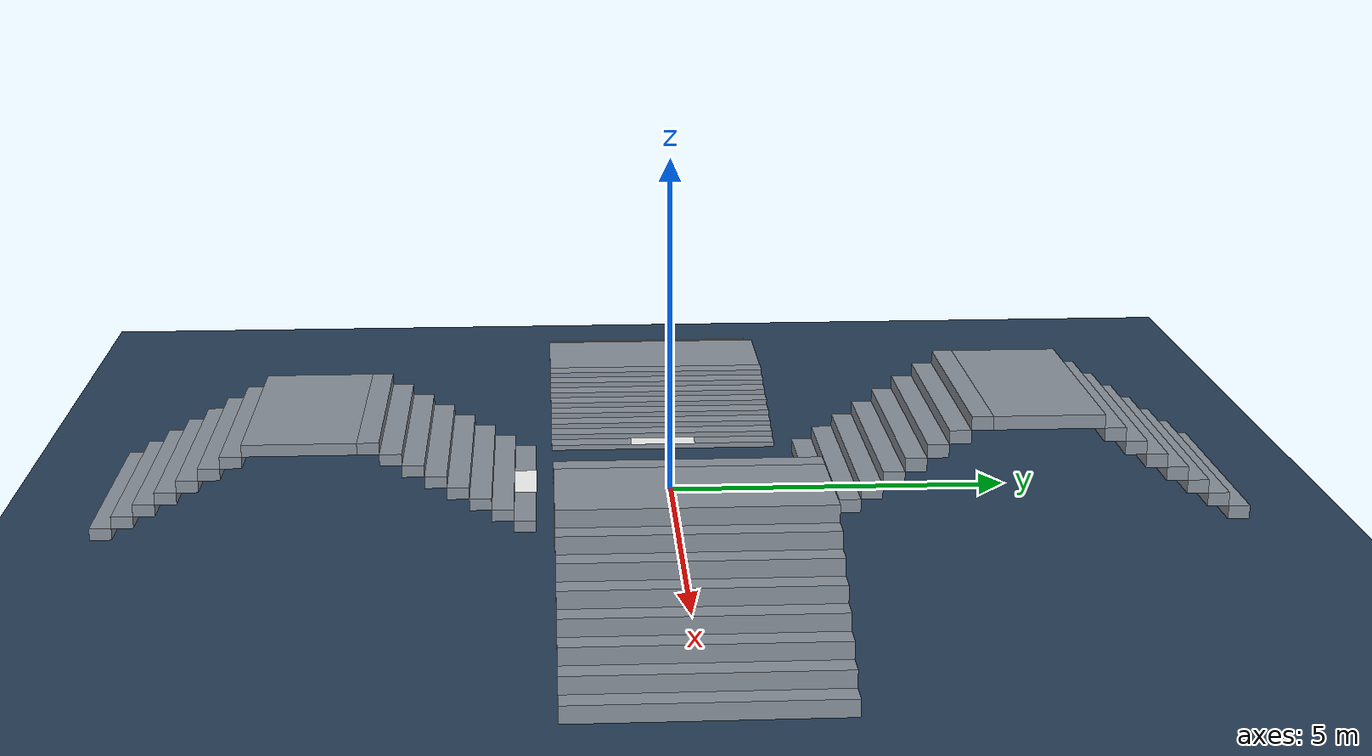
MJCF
<?xml version="1.0" encoding="utf-8"?>
<mujoco model="map_cross_stairs">
  <statistic center="0 0 0.1" extent="0.8" />
  <visual>
    <headlight diffuse="0.6 0.6 0.6" ambient="0.3 0.3 0.3" specular="0 0 0" />
    <rgba haze="0.15 0.25 0.35 1" />
    <global azimuth="135" elevation="-25" />
    <quality shadowsize="4096" />
  </visual>
<asset>
    <material name="terrain" rgba="0.55 0.58 0.62 1" reflectance="0.05" />
    <texture type="skybox" builtin="gradient" rgb1="0.3 0.5 0.7" rgb2="0 0 0" width="512" height="3072" />
    <texture type="2d" name="groundplane" builtin="checker" mark="edge" rgb1="0.2 0.3 0.4" rgb2="0.1 0.2 0.3" markrgb="0.8 0.8 0.8" width="300" height="300" />
    <material name="groundplane" texture="groundplane" texuniform="true" texrepeat="5 5" reflectance="0.2" />
<texture name="tex_label_1" type="2d" file="./imgs/label_1.png" />
    <material name="mat_label_1" texture="tex_label_1" specular="0" shininess="0" emission="1" texrepeat="1 1" rgba="1 1 1 1" />
    <texture name="tex_label_7" type="2d" file="./imgs/label_7.png" />
    <material name="mat_label_7" texture="tex_label_7" specular="0" shininess="0" emission="1" texrepeat="1 1" rgba="1 1 1 1" />
    <texture name="tex_label_10" type="2d" file="./imgs/label_10.png" />
    <material name="mat_label_10" texture="tex_label_10" specular="0" shininess="0" emission="1" texrepeat="1 1" rgba="1 1 1 1" />
    <texture name="tex_label_4" type="2d" file="./imgs/label_4.png" />
    <material name="mat_label_4" texture="tex_label_4" specular="0" shininess="0" emission="1" texrepeat="1 1" rgba="1 1 1 1" />
  </asset>
  <worldbody>
    <light pos="0 0 3" dir="0 0 -1" directional="true" castshadow="true" />
<geom name="floor" size="0 0 0.05" type="plane" material="groundplane" />
    <geom pos="-2.155 1.8982025386783976e-17 0.04" type="box" size="0.155 1.75 0.04" quat="6.123233995736766e-17 0.0 0.0 1.0" material="terrain" />
    <geom pos="-2.465 5.694607616035192e-17 0.12" type="box" size="0.155 1.75 0.04" quat="6.123233995736766e-17 0.0 0.0 1.0" material="terrain" />
    <geom pos="-2.775 9.491012693391986e-17 0.2" type="box" size="0.155 1.75 0.04" quat="6.123233995736766e-17 0.0 0.0 1.0" material="terrain" />
    <geom pos="-3.085 1.328741777074878e-16 0.28" type="box" size="0.155 1.75 0.04" quat="6.123233995736766e-17 0.0 0.0 1.0" material="terrain" />
    <geom pos="-3.395 1.7083822848105578e-16 0.36000000000000004" type="box" size="0.155 1.75 0.04" quat="6.123233995736766e-17 0.0 0.0 1.0" material="terrain" />
    <geom pos="-3.705 2.0880227925462374e-16 0.44000000000000006" type="box" size="0.155 1.75 0.04" quat="6.123233995736766e-17 0.0 0.0 1.0" material="terrain" />
    <geom pos="-4.015000000000001 2.467663300281917e-16 0.52" type="box" size="0.155 1.75 0.04" quat="6.123233995736766e-17 0.0 0.0 1.0" material="terrain" />
    <geom pos="-4.325 2.8473038080175964e-16 0.6" type="box" size="0.155 1.75 0.04" quat="6.123233995736766e-17 0.0 0.0 1.0" material="terrain" />
    <geom pos="-5.28 4.016841501203319e-16 0.6" type="box" size="0.8 1.75 0.04" quat="6.123233995736766e-17 0.0 0.0 1.0" material="terrain" />
    <geom pos="-6.235 5.186379194389041e-16 0.52" type="box" size="0.155 1.75 0.04" quat="6.123233995736766e-17 0.0 0.0 1.0" material="terrain" />
    <geom pos="-6.545 5.56601970212472e-16 0.44" type="box" size="0.155 1.75 0.04" quat="6.123233995736766e-17 0.0 0.0 1.0" material="terrain" />
    <geom pos="-6.8549999999999995 5.945660209860399e-16 0.36" type="box" size="0.155 1.75 0.04" quat="6.123233995736766e-17 0.0 0.0 1.0" material="terrain" />
    <geom pos="-7.164999999999999 6.325300717596078e-16 0.27999999999999997" type="box" size="0.155 1.75 0.04" quat="6.123233995736766e-17 0.0 0.0 1.0" material="terrain" />
    <geom pos="-7.474999999999999 6.704941225331758e-16 0.19999999999999996" type="box" size="0.155 1.75 0.04" quat="6.123233995736766e-17 0.0 0.0 1.0" material="terrain" />
    <geom pos="-7.784999999999998 7.084581733067436e-16 0.11999999999999995" type="box" size="0.155 1.75 0.04" quat="6.123233995736766e-17 0.0 0.0 1.0" material="terrain" />
    <geom pos="-8.094999999999999 7.464222240803115e-16 0.03999999999999995" type="box" size="0.155 1.75 0.04" quat="6.123233995736766e-17 0.0 0.0 1.0" material="terrain" />
    <geom pos="-2.155 1.8982025386783976e-17 0.082" type="box" size="0.5 0.17532467532467533 0.0001" quat="0.7071067811865476 0.0 0.0 0.7071067811865475" contype="0" conaffinity="0" group="1" material="mat_label_1" rgba="1 1 1 1" />
    <geom pos="9.491012693391988e-18 2.155 0.1" type="box" size="0.155 1.75 0.1" quat="0.7071067811865476 0.0 0.0 0.7071067811865475" material="terrain" />
    <geom pos="2.847303808017596e-17 2.465 0.30000000000000004" type="box" size="0.155 1.75 0.1" quat="0.7071067811865476 0.0 0.0 0.7071067811865475" material="terrain" />
    <geom pos="4.745506346695993e-17 2.775 0.5" type="box" size="0.155 1.75 0.1" quat="0.7071067811865476 0.0 0.0 0.7071067811865475" material="terrain" />
    <geom pos="6.64370888537439e-17 3.085 0.7" type="box" size="0.155 1.75 0.1" quat="0.7071067811865476 0.0 0.0 0.7071067811865475" material="terrain" />
    <geom pos="8.541911424052789e-17 3.395 0.8999999999999999" type="box" size="0.155 1.75 0.1" quat="0.7071067811865476 0.0 0.0 0.7071067811865475" material="terrain" />
    <geom pos="1.0440113962731187e-16 3.705 1.0999999999999999" type="box" size="0.155 1.75 0.1" quat="0.7071067811865476 0.0 0.0 0.7071067811865475" material="terrain" />
    <geom pos="1.2338316501409585e-16 4.015000000000001 1.2999999999999998" type="box" size="0.155 1.75 0.1" quat="0.7071067811865476 0.0 0.0 0.7071067811865475" material="terrain" />
    <geom pos="1.4236519040087982e-16 4.325 1.4999999999999998" type="box" size="0.155 1.75 0.1" quat="0.7071067811865476 0.0 0.0 0.7071067811865475" material="terrain" />
    <geom pos="2.0084207506016595e-16 5.28 1.4999999999999998" type="box" size="0.8 1.75 0.1" quat="0.7071067811865476 0.0 0.0 0.7071067811865475" material="terrain" />
    <geom pos="2.5931895971945205e-16 6.235 1.2999999999999998" type="box" size="0.155 1.75 0.1" quat="0.7071067811865476 0.0 0.0 0.7071067811865475" material="terrain" />
    <geom pos="2.78300985106236e-16 6.545 1.0999999999999999" type="box" size="0.155 1.75 0.1" quat="0.7071067811865476 0.0 0.0 0.7071067811865475" material="terrain" />
    <geom pos="2.9728301049301994e-16 6.8549999999999995 0.8999999999999999" type="box" size="0.155 1.75 0.1" quat="0.7071067811865476 0.0 0.0 0.7071067811865475" material="terrain" />
    <geom pos="3.162650358798039e-16 7.164999999999999 0.7" type="box" size="0.155 1.75 0.1" quat="0.7071067811865476 0.0 0.0 0.7071067811865475" material="terrain" />
    <geom pos="3.352470612665879e-16 7.474999999999999 0.49999999999999994" type="box" size="0.155 1.75 0.1" quat="0.7071067811865476 0.0 0.0 0.7071067811865475" material="terrain" />
    <geom pos="3.542290866533718e-16 7.784999999999998 0.29999999999999993" type="box" size="0.155 1.75 0.1" quat="0.7071067811865476 0.0 0.0 0.7071067811865475" material="terrain" />
    <geom pos="3.7321111204015577e-16 8.094999999999999 0.09999999999999992" type="box" size="0.155 1.75 0.1" quat="0.7071067811865476 0.0 0.0 0.7071067811865475" material="terrain" />
    <geom pos="9.491012693391988e-18 2.155 0.202" type="box" size="0.5 0.17532467532467533 0.0001" quat="1.0 0.0 0.0 0.0" contype="0" conaffinity="0" group="1" material="mat_label_7" rgba="1 1 1 1" />
    <geom pos="2.155 0.0 0.115" type="box" size="0.155 1.75 0.115" quat="1.0 0.0 0.0 0.0" material="terrain" />
    <geom pos="2.465 0.0 0.34500000000000003" type="box" size="0.155 1.75 0.115" quat="1.0 0.0 0.0 0.0" material="terrain" />
    <geom pos="2.775 0.0 0.5750000000000001" type="box" size="0.155 1.75 0.115" quat="1.0 0.0 0.0 0.0" material="terrain" />
    <geom pos="3.085 0.0 0.805" type="box" size="0.155 1.75 0.115" quat="1.0 0.0 0.0 0.0" material="terrain" />
    <geom pos="3.395 0.0 1.0350000000000001" type="box" size="0.155 1.75 0.115" quat="1.0 0.0 0.0 0.0" material="terrain" />
    <geom pos="3.705 0.0 1.2650000000000001" type="box" size="0.155 1.75 0.115" quat="1.0 0.0 0.0 0.0" material="terrain" />
    <geom pos="4.015000000000001 0.0 1.495" type="box" size="0.155 1.75 0.115" quat="1.0 0.0 0.0 0.0" material="terrain" />
    <geom pos="4.325 0.0 1.725" type="box" size="0.155 1.75 0.115" quat="1.0 0.0 0.0 0.0" material="terrain" />
    <geom pos="5.28 0.0 1.725" type="box" size="0.8 1.75 0.115" quat="1.0 0.0 0.0 0.0" material="terrain" />
    <geom pos="6.235 0.0 1.495" type="box" size="0.155 1.75 0.115" quat="1.0 0.0 0.0 0.0" material="terrain" />
    <geom pos="6.545 0.0 1.2650000000000001" type="box" size="0.155 1.75 0.115" quat="1.0 0.0 0.0 0.0" material="terrain" />
    <geom pos="6.8549999999999995 0.0 1.0350000000000001" type="box" size="0.155 1.75 0.115" quat="1.0 0.0 0.0 0.0" material="terrain" />
    <geom pos="7.164999999999999 0.0 0.8050000000000002" type="box" size="0.155 1.75 0.115" quat="1.0 0.0 0.0 0.0" material="terrain" />
    <geom pos="7.474999999999999 0.0 0.5750000000000002" type="box" size="0.155 1.75 0.115" quat="1.0 0.0 0.0 0.0" material="terrain" />
    <geom pos="7.784999999999998 0.0 0.3450000000000002" type="box" size="0.155 1.75 0.115" quat="1.0 0.0 0.0 0.0" material="terrain" />
    <geom pos="8.094999999999999 0.0 0.11500000000000019" type="box" size="0.155 1.75 0.115" quat="1.0 0.0 0.0 0.0" material="terrain" />
    <geom pos="2.155 0.0 0.232" type="box" size="0.5 0.17532467532467533 0.0001" quat="0.7071067811865476 0.0 0.0 -0.7071067811865475" contype="0" conaffinity="0" group="1" material="mat_label_10" rgba="1 1 1 1" />
    <geom pos="9.491012693391988e-18 -2.155 0.08499999999999999" type="box" size="0.155 1.75 0.08499999999999999" quat="0.7071067811865476 0.0 0.0 -0.7071067811865475" material="terrain" />
    <geom pos="2.847303808017596e-17 -2.465 0.255" type="box" size="0.155 1.75 0.08499999999999999" quat="0.7071067811865476 0.0 0.0 -0.7071067811865475" material="terrain" />
    <geom pos="4.745506346695993e-17 -2.775 0.425" type="box" size="0.155 1.75 0.08499999999999999" quat="0.7071067811865476 0.0 0.0 -0.7071067811865475" material="terrain" />
    <geom pos="6.64370888537439e-17 -3.085 0.595" type="box" size="0.155 1.75 0.08499999999999999" quat="0.7071067811865476 0.0 0.0 -0.7071067811865475" material="terrain" />
    <geom pos="8.541911424052789e-17 -3.395 0.7649999999999999" type="box" size="0.155 1.75 0.08499999999999999" quat="0.7071067811865476 0.0 0.0 -0.7071067811865475" material="terrain" />
    <geom pos="1.0440113962731187e-16 -3.705 0.9349999999999998" type="box" size="0.155 1.75 0.08499999999999999" quat="0.7071067811865476 0.0 0.0 -0.7071067811865475" material="terrain" />
    <geom pos="1.2338316501409585e-16 -4.015000000000001 1.1049999999999998" type="box" size="0.155 1.75 0.08499999999999999" quat="0.7071067811865476 0.0 0.0 -0.7071067811865475" material="terrain" />
    <geom pos="1.4236519040087982e-16 -4.325 1.2749999999999997" type="box" size="0.155 1.75 0.08499999999999999" quat="0.7071067811865476 0.0 0.0 -0.7071067811865475" material="terrain" />
    <geom pos="2.0084207506016595e-16 -5.28 1.2749999999999997" type="box" size="0.8 1.75 0.08499999999999999" quat="0.7071067811865476 0.0 0.0 -0.7071067811865475" material="terrain" />
    <geom pos="2.5931895971945205e-16 -6.235 1.1049999999999998" type="box" size="0.155 1.75 0.08499999999999999" quat="0.7071067811865476 0.0 0.0 -0.7071067811865475" material="terrain" />
    <geom pos="2.78300985106236e-16 -6.545 0.9349999999999998" type="box" size="0.155 1.75 0.08499999999999999" quat="0.7071067811865476 0.0 0.0 -0.7071067811865475" material="terrain" />
    <geom pos="2.9728301049301994e-16 -6.8549999999999995 0.7649999999999999" type="box" size="0.155 1.75 0.08499999999999999" quat="0.7071067811865476 0.0 0.0 -0.7071067811865475" material="terrain" />
    <geom pos="3.162650358798039e-16 -7.164999999999999 0.595" type="box" size="0.155 1.75 0.08499999999999999" quat="0.7071067811865476 0.0 0.0 -0.7071067811865475" material="terrain" />
    <geom pos="3.352470612665879e-16 -7.474999999999999 0.425" type="box" size="0.155 1.75 0.08499999999999999" quat="0.7071067811865476 0.0 0.0 -0.7071067811865475" material="terrain" />
    <geom pos="3.542290866533718e-16 -7.784999999999998 0.255" type="box" size="0.155 1.75 0.08499999999999999" quat="0.7071067811865476 0.0 0.0 -0.7071067811865475" material="terrain" />
    <geom pos="3.7321111204015577e-16 -8.094999999999999 0.08500000000000002" type="box" size="0.155 1.75 0.08499999999999999" quat="0.7071067811865476 0.0 0.0 -0.7071067811865475" material="terrain" />
    <geom pos="9.491012693391988e-18 -2.155 0.172" type="box" size="0.5 0.17532467532467533 0.0001" quat="6.123233995736766e-17 0.0 0.0 -1.0" contype="0" conaffinity="0" group="1" material="mat_label_4" rgba="1 1 1 1" />
  </worldbody>
</mujoco>
